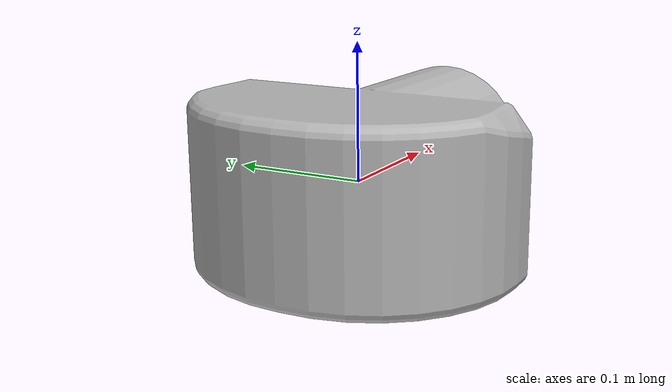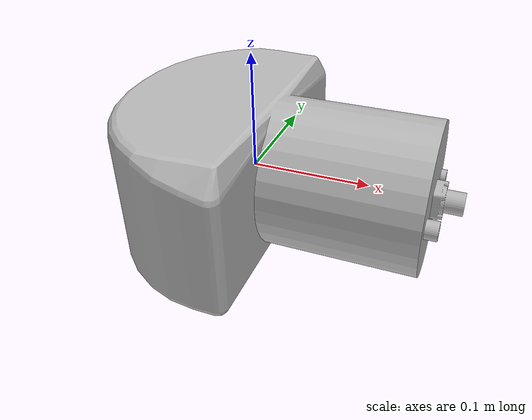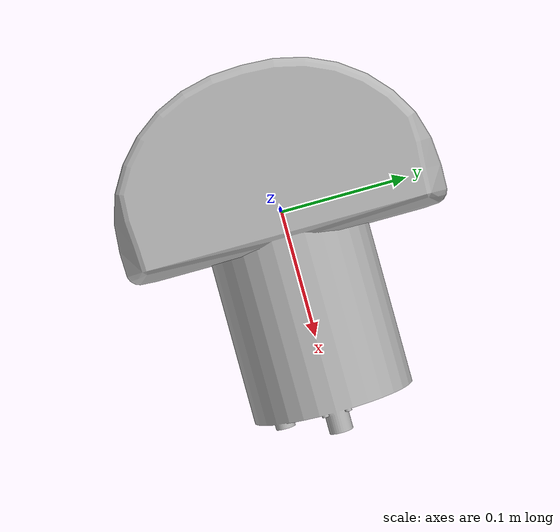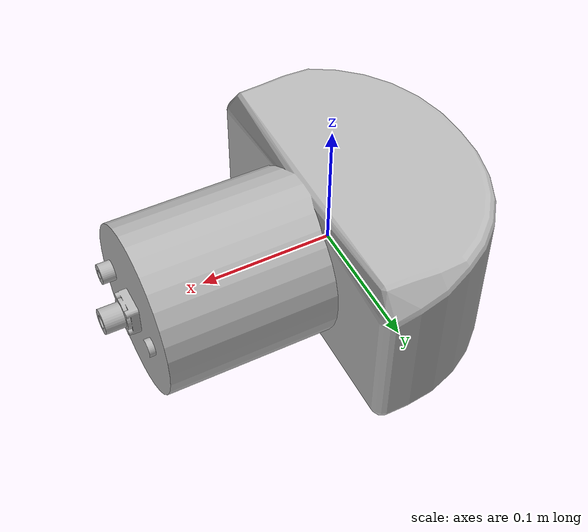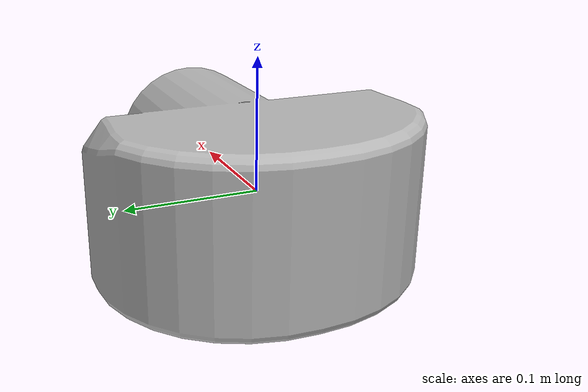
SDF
<?xml version="1.0" ?>
<sdf version="1.6">
  <model name="blueview_m450">
    <link name="forward_sonar_link">
      <inertial>
        <pose>0 0 0 3.14159265359 0 -1.570796</pose>
        <mass>4.78</mass>
        <!-- Mark only - based on cylinder -->
        <inertia>
          <ixx>0.0191</ixx>          <!-- as 2/5mr^2 -->
          <ixy>0</ixy>
          <ixz>0</ixz>
          <iyy>0.0191</iyy>
          <iyz>0</iyz>
          <izz>0.0191</izz>
        </inertia>
      </inertial>
      <collision name="collision">
        <pose>0 0 0 3.14159265359 0 -1.570796</pose>
        <geometry>
          <mesh>
            <uri>model://blueview_m450_nps_multibeam/meshes/COLLISION-BlueView-M450.dae</uri>
          </mesh>
        </geometry>
      </collision>
      <visual name="visual">
        <pose>0 0 0 3.14159265359 0 -1.570796</pose>
        <geometry>
          <mesh>
            <uri>model://blueview_m450_nps_multibeam/meshes/BlueView-M450.dae</uri>
          </mesh>
        </geometry>
      </visual>

      <sensor name="multieam_sonar" type="depth">
        <visualize>true</visualize>
        <always_on>true</always_on>
        <update_rate>10</update_rate>
        <camera>
          <!-- 90 degrees for the M450-90 -->
          <horizontal_fov>1.54719755</horizontal_fov>
          <image>
            <width>512</width>
            <!-- Set vertical FOV by setting image height -->
            <!-- Approx 2 times the spec sheet (sepc: 10 deg.) -->
            <height>114</height>
            <format>R8G8B8</format>
          </image>
          <clip>
            <near>2</near>
            <far>150</far>
          </clip>
          <depth_camera>
            <output>depths</output>
          </depth_camera>
          <save enabled="true">
            <path>/tmp/camera</path>
          </save>
        </camera>
        <plugin filename="libnps_multibeam_sonar_ros_plugin.so" name="forward_sonar">
          <!-- Sonar properties -->
          <verticalFOV>10</verticalFOV>
          <sonarFreq>450e3</sonarFreq>
          <bandwidth>29.9e3</bandwidth>
          <soundSpeed>1500</soundSpeed>
          <sourceLevel>220</sourceLevel>
          <maxDistance>10</maxDistance>
          <constantReflectivity>true</constantReflectivity>
          <raySkips>10</raySkips>
          <sensorGain>0.02</sensorGain>
          <plotScaler>0</plotScaler>
          <writeLog>false</writeLog>
          <debugFlag>false</debugFlag>
          <writeFrameInterval>5</writeFrameInterval>
          <!-- This name is prepended to ROS topics -->
          <cameraName>blueview_m450</cameraName>
          <!-- ROS publication topics -->
          <imageTopicName>image_raw</imageTopicName>
          <cameraInfoTopicName>image_raw/camera_info</cameraInfoTopicName>
          <pointCloudTopicName>point_cloud</pointCloudTopicName>
          <depthImageTopicName>image_depth</depthImageTopicName>
          <depthImageCameraInfoTopicName>image_depth/camera_info</depthImageCameraInfoTopicName>
          <sonarImageRawTopicName>sonar_image_raw</sonarImageRawTopicName>
          <sonarImageTopicName>sonar_image</sonarImageTopicName>
          <frameName>forward_sonar_optical_link</frameName>
        </plugin>
      </sensor>
    </link>
  </model>
</sdf>
